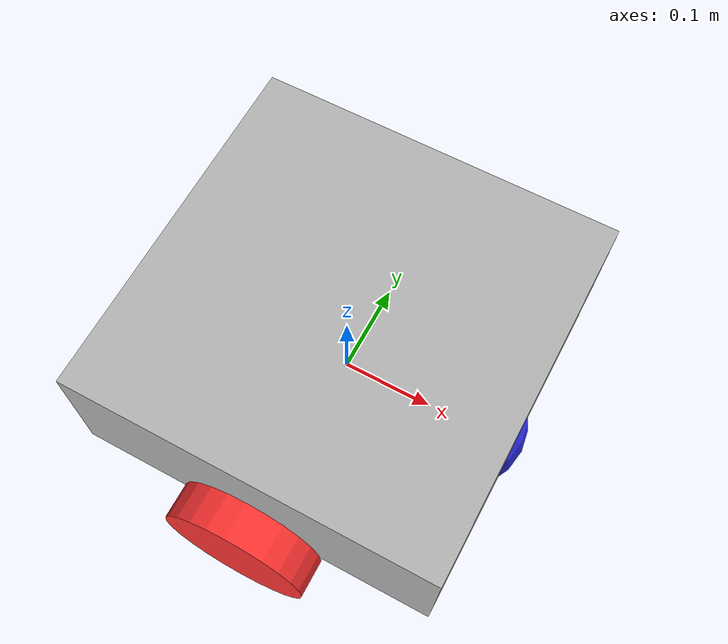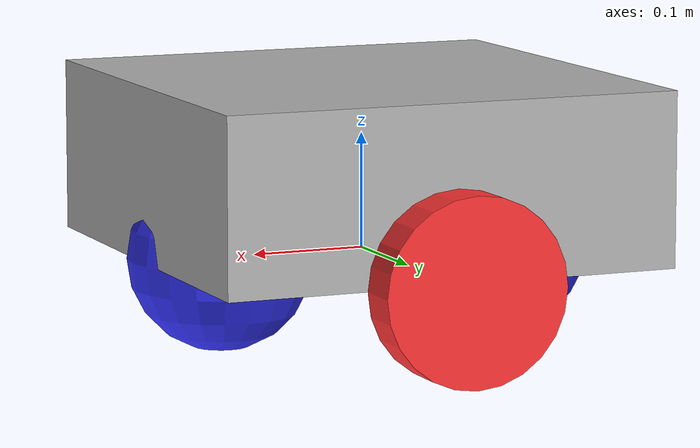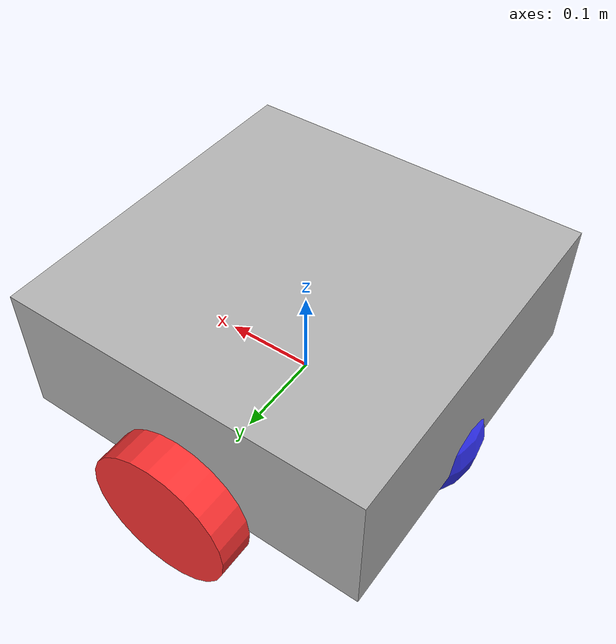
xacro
<?xml version="1.0"?>
<robot xmlns:xacro="http://www.ros.org/wiki/xacro" name="robot_core">

    <!--COLORS-->
    <material name="white">
        <color rgba="1 1 1 1"/>
    </material>

    <material name="black">
        <color rgba="0 0 0 1"/>
    </material>

    <material name="LightGrey">
        <color rgba="0.7 0.7 0.7 1.0"/>
    </material>

    <material name="blue">
        <color rgba="0.2 0.2 1 1"/>
    </material>

    <material name="green">
        <color rgba="0.2 1 0.2 1"/>
    </material>

    <material name="red">
        <color rgba="1 0.2 0.2 1"/>
    </material>

    <!--DESIGN-->
    <xacro:property name="chassis_x" value="0.4"/>
    <xacro:property name="chassis_y" value="0.4"/>
    <xacro:property name="chassis_z" value="0.15"/>
    <xacro:property name="wheel_radius" value="0.08"/>
    <xacro:property name="wheel_length" value="0.04"/>
    <xacro:property name="caster_wheel_front_x_origin" value="0.33"/>
    <xacro:property name="caster_wheel_back_x_origin" value="0.07"/>
    <xacro:property name="caster_wheel_radius" value="0.08"/>
    <xacro:property name="chassis_mass" value="0.5"/>
    <xacro:property name="wheel_mass" value="0.1"/>

    <!--base-->
    <link name="base_link"></link>

    <joint name="chassis_joint" type="fixed">
        <parent link="base_link"/>
        <child link="chassis"/>
        <origin xyz="-0.2 0.0 0.0" rpy="0.0 0.0 0.0"/>
    </joint>

    <link name="chassis">
        <visual>
            <geometry>
                <box size="${chassis_x} ${chassis_y} ${chassis_z}" />
            </geometry>
            <material name="LightGrey"/>
            <origin xyz="${chassis_x/2} 0.0 ${chassis_z/2}" rpy="0.0 0.0 0.0"/>
        </visual>
        <collision>
            <geometry>
                <box size="${chassis_x} ${chassis_y} ${chassis_z}" />
            </geometry>
        </collision>
        <xacro:inertial_box mass="${chassis_mass}" x="${chassis_x/2}" y="${chassis_y}" z="${chassis_z}">
            <origin xyz="${chassis_x/2} 0.0 ${chassis_z/2}" rpy="0.0 0.0 0.0"/>
        </xacro:inertial_box>
    </link>

    <gazebo reference="chassis">
        <material>Gazebo/White</material>
    </gazebo>

    <!--left wheel-->
    <joint name="left_wheel_joint" type="continuous">
        <origin xyz="0.0 0.222 0.0" rpy="${-pi/2} 0.0 0.0"/>
        <parent link="base_link"/>
        <child link="left_wheel"/>
        <axis xyz="0.0 0.0 1.0"/>
    </joint>

    <link name="left_wheel">
        <visual>
            <geometry>
                <cylinder radius="${wheel_radius}" length="${wheel_length}"/>
            </geometry>
            <material name="red"/>
        </visual>
        <collision>
            <geometry>
                <sphere radius="${wheel_radius}"/>
            </geometry>
        </collision>
        <xacro:inertial_cylinder mass="${wheel_mass}" length="${wheel_length}" radius="${wheel_radius}">
            <origin xyz="0.0 0.222 0.0" rpy="${-pi/2} 0.0 0.0"/>
        </xacro:inertial_cylinder>
    </link>

    <gazebo reference="left_wheel">
        <material>Gazebo/Black</material>
    </gazebo>

     <!--right wheel-->
    <joint name="right_wheel_joint" type="continuous">
        <origin xyz="0.0 -0.222 0.0" rpy="${pi/2} 0.0 0.0"/>
        <parent link="base_link"/>
        <child link="right_wheel"/>
        <axis xyz="0.0 0.0 -1.0"/>
    </joint>

    <link name="right_wheel">
        <visual>
            <geometry>
                <cylinder radius="${wheel_radius}" length="${wheel_length}"/>
            </geometry>
            <material name="red"/>
        </visual>
        <collision>
            <geometry>
                <sphere radius="${wheel_radius}"/>
            </geometry>
        </collision>
        <xacro:inertial_cylinder mass="${wheel_mass}" length="${wheel_length}" radius="${wheel_radius}">
            <origin xyz="0.0 -0.222 0.0" rpy="${pi/2} 0.0 0.0"/>
        </xacro:inertial_cylinder>
    </link>

    <gazebo reference="right_wheel">
        <material>Gazebo/Black</material>
    </gazebo>

    <!--caster wheel front-->
    <joint name="caster_wheel_front_joint" type="fixed">
        <origin xyz="${caster_wheel_front_x_origin} 0.0 0.0" rpy="0.0 0.0 0.0"/>
        <parent link="chassis"/>
        <child link="caster_wheel_front_link"/>
        <limit lower="0.0" upper="0.0" effort="0.0" velocity="0.0"/>
    </joint>

    <link name="caster_wheel_front_link">
        <visual>
            <geometry>
                <sphere radius="${caster_wheel_radius}"/>
            </geometry>
            <material name="blue"/>
        </visual>
        <collision>
            <geometry>
                <sphere radius="${caster_wheel_radius}"/>
            </geometry>
        </collision>
        <xacro:inertial_sphere mass="${wheel_mass}" radius="${caster_wheel_radius}">
            <origin xyz="${caster_wheel_front_x_origin} 0.0 0.0" rpy="0.0 0.0 0.0"/>
        </xacro:inertial_sphere>
    </link>

    <gazebo reference="caster_wheel_front_link">
        <material>Gazebo/Grey</material>
        <mu1 value="0.0"/>
        <mu2 value="0.0"/>
    </gazebo>

    <!--caster wheel back-->

    <joint name="caster_wheel_back_joint" type="fixed">
        <origin xyz="${caster_wheel_back_x_origin} 0.0 0.0" rpy="0.0 0.0 0.0"/>
        <parent link="chassis"/>
        <child link="caster_wheel_back_link"/>
        <limit lower="0.0" upper="0.0" effort="0.0" velocity="0.0"/>
    </joint>

    <link name="caster_wheel_back_link">
        <visual>
            <geometry>
                <sphere radius="${caster_wheel_radius}"/>
            </geometry>
            <material name="blue"/>
        </visual>
        <collision>
            <geometry>
                <sphere radius="${caster_wheel_radius}"/>
            </geometry>
        </collision>
        <xacro:inertial_sphere mass="${wheel_mass}" radius="${caster_wheel_radius}">
            <origin xyz="${caster_wheel_back_x_origin} 0.0 0.0" rpy="0.0 0.0 0.0"/>
        </xacro:inertial_sphere>
    </link>

    <gazebo reference="caster_wheel_back_link">
        <material>Gazebo/Grey</material>
        <mu1 value="0.0"/>
        <mu2 value="0.0"/>
    </gazebo>

</robot>
